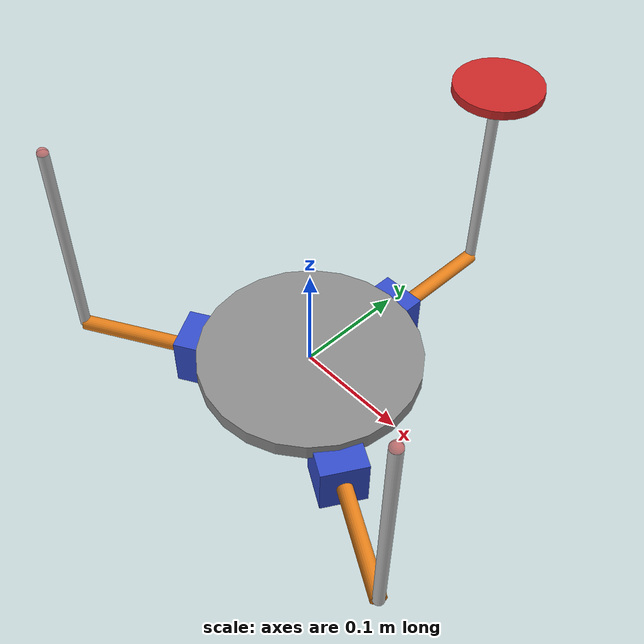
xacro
<?xml version="1.0"?>
<robot xmlns:xacro="http://www.ros.org/wiki/xacro" name="deltaflex">

  <xacro:property name="base_r" value="0.100"/>
  <!-- base circumradius [m] -->
  <xacro:property name="ee_r" value="0.040"/>
  <!-- EE circumradius [m] -->
  <xacro:property name="upper_len" value="0.120"/>
  <!-- upper arm length [m] -->
  <xacro:property name="lower_len" value="0.200"/>
  <!-- forearm length [m] -->

  <!-- Joint dynamics — rigid by default for position control -->
  <xacro:property name="joint_damping" value="0.01"/>
  <!-- N·m·s/rad -->
  <xacro:property name="joint_friction" value="0.002"/>

  <!-- ================================================================
       Inertia helper macro — approximates solid cylinder
       ================================================================ -->
  <xacro:macro name="cyl_inertia" params="m r h">
    <inertial>
      <mass value="${m}"/>
      <inertia ixx="${m*(3*r*r+h*h)/12}" ixy="0" ixz="0" iyy="${m*(3*r*r+h*h)/12}" iyz="0" izz="${m*r*r/2}"/>
    </inertial>
  </xacro:macro>

  <!-- ================================================================
       WORLD + BASE
       ================================================================ -->
  <link name="world"/>

  <joint name="world_to_base" type="fixed">
    <parent link="world"/>
    <child link="base_link"/>
    <origin xyz="0 0 0" rpy="0 0 0"/>
  </joint>

  <link name="base_link">
    <visual>
      <geometry>
        <cylinder radius="${base_r}" length="0.015"/>
      </geometry>
      <material name="gray">
        <color rgba="0.55 0.55 0.55 1"/>
      </material>
    </visual>
    <collision>
      <geometry>
        <cylinder radius="${base_r}" length="0.015"/>
      </geometry>
    </collision>
    <inertial>
      <mass value="0.50"/>
      <inertia ixx="0.0012" ixy="0" ixz="0" iyy="0.0012" iyz="0" izz="0.0025"/>
    </inertial>
  </link>

  <xacro:macro name="delta_arm" params="id angle_deg">

    <!-- Motor body fixed to base -->
    <link name="motor_${id}">
      <visual>
        <geometry>
          <box size="0.042 0.042 0.048"/>
        </geometry>
        <material name="blue">
          <color rgba="0.2 0.3 0.8 1"/>
        </material>
      </visual>
      <collision>
        <geometry>
          <box size="0.042 0.042 0.048"/>
        </geometry>
      </collision>
      <inertial>
        <mass value="0.28"/>
        <inertia ixx="0.0001" ixy="0" ixz="0" iyy="0.0001" iyz="0" izz="0.0001"/>
      </inertial>
    </link>

    <joint name="base_to_motor_${id}" type="fixed">
      <parent link="base_link"/>
      <child link="motor_${id}"/>
      <origin xyz="${base_r*cos(angle_deg * pi / 180)}
             ${base_r*sin(angle_deg * pi / 180)}
             -0.024" rpy="0 0 ${angle_deg * pi / 180}"/>
    </joint>

    <!-- ACTUATED joint — motor shaft (joint_1, joint_2, joint_3) -->
    <link name="upper_arm_${id}">
      <visual>
        <origin xyz="0 0 ${-upper_len/2}" rpy="0 0 0"/>
        <geometry>
          <cylinder radius="0.007" length="${upper_len}"/>
        </geometry>
        <material name="orange">
          <color rgba="0.9 0.5 0.1 1"/>
        </material>
      </visual>
      <collision>
        <origin xyz="0 0 ${-upper_len/2}" rpy="0 0 0"/>
        <geometry>
          <cylinder radius="0.007" length="${upper_len}"/>
        </geometry>
      </collision>
      <xacro:cyl_inertia m="0.04" r="0.007" h="${upper_len}"/>
    </link>

    <joint name="joint_${id}" type="revolute">
      <parent link="motor_${id}"/>
      <child link="upper_arm_${id}"/>
      <origin xyz="0 0 0" rpy="0 ${-pi/2} 0"/>
      <axis xyz="0 1 0"/>
      <limit lower="${-pi/2}" upper="${pi/2}" effort="10.0" velocity="3.14"/>
      <dynamics damping="${joint_damping}" friction="${joint_friction}"/>
    </joint>

    <!-- PASSIVE elbow joint (upper arm → forearm) -->
    <link name="forearm_${id}">
      <visual>
        <origin xyz="0 0 ${-lower_len/2}" rpy="0 0 0"/>
        <geometry>
          <cylinder radius="0.005" length="${lower_len}"/>
        </geometry>
        <material name="silver">
          <color rgba="0.75 0.75 0.75 1"/>
        </material>
      </visual>
      <collision>
        <origin xyz="0 0 ${-lower_len/2}" rpy="0 0 0"/>
        <geometry>
          <cylinder radius="0.005" length="${lower_len}"/>
        </geometry>
      </collision>
      <xacro:cyl_inertia m="0.015" r="0.005" h="${lower_len}"/>
    </link>

    <joint name="elbow_${id}" type="revolute">
      <parent link="upper_arm_${id}"/>
      <child link="forearm_${id}"/>
      <origin xyz="0 0 ${-upper_len}" rpy="0 ${-pi/2} 0"/>
      <axis xyz="0 1 0"/>
      <limit lower="${-pi/2}" upper="${pi/2}" effort="5.0" velocity="3.14"/>
      <dynamics damping="${joint_damping}" friction="${joint_friction}"/>
    </joint>

    <!-- EE attachment frame at tip of each forearm -->
    <link name="ee_attach_${id}">
      <inertial>
        <mass value="0.001"/>
        <inertia ixx="1e-7" ixy="0" ixz="0" iyy="1e-7" iyz="0" izz="1e-7"/>
      </inertial>
    </link>

    <joint name="forearm_${id}_to_ee_attach" type="fixed">
      <parent link="forearm_${id}"/>
      <child link="ee_attach_${id}"/>
      <origin xyz="0 0 ${-lower_len}" rpy="0 0 0"/>
    </joint>

  </xacro:macro>

  <!-- Instantiate three arms at 90°, 210°, 330° -->
  <xacro:delta_arm id="1" angle_deg="90"/>
  <xacro:delta_arm id="2" angle_deg="210"/>
  <xacro:delta_arm id="3" angle_deg="330"/>

  <link name="end_effector">
    <visual>
      <geometry>
        <cylinder radius="${ee_r}" length="0.008"/>
      </geometry>
      <material name="red">
        <color rgba="0.8 0.15 0.15 1"/>
      </material>
    </visual>
    <collision>
      <geometry>
        <cylinder radius="${ee_r}" length="0.008"/>
      </geometry>
    </collision>
    <inertial>
      <mass value="0.020"/>
      <inertia ixx="1.5e-5" ixy="0" ixz="0" iyy="1.5e-5" iyz="0" izz="3.2e-5"/>
    </inertial>
  </link>

  <joint name="ee_attach_1_to_ee" type="fixed">
    <parent link="ee_attach_1"/>
    <child link="end_effector"/>
    <origin xyz="0 0 0" rpy="0 0 0"/>
  </joint>

  <!-- Visual connector arm 2 → EE (massless, visual only) -->
  <link name="ee_connector_2">
    <visual>
      <geometry>
        <sphere radius="0.005"/>
      </geometry>
      <material name="red">
        <color rgba="0.8 0.15 0.15 0.5"/>
      </material>
    </visual>
    <inertial>
      <mass value="0.0001"/>
      <inertia ixx="1e-9" ixy="0" ixz="0" iyy="1e-9" iyz="0" izz="1e-9"/>
    </inertial>
  </link>
  <joint name="ee_attach_2_to_connector" type="fixed">
    <parent link="ee_attach_2"/>
    <child link="ee_connector_2"/>
    <origin xyz="0 0 0" rpy="0 0 0"/>
  </joint>

  <!-- Visual connector arm 3 → EE (massless, visual only) -->
  <link name="ee_connector_3">
    <visual>
      <geometry>
        <sphere radius="0.005"/>
      </geometry>
      <material name="red">
        <color rgba="0.8 0.15 0.15 0.5"/>
      </material>
    </visual>
    <inertial>
      <mass value="0.0001"/>
      <inertia ixx="1e-9" ixy="0" ixz="0" iyy="1e-9" iyz="0" izz="1e-9"/>
    </inertial>
  </link>
  <joint name="ee_attach_3_to_connector" type="fixed">
    <parent link="ee_attach_3"/>
    <child link="ee_connector_3"/>
    <origin xyz="0 0 0" rpy="0 0 0"/>
  </joint>

  <xacro:include filename="$(find deltaflex_description)/urdf/deltaflex.ros2_control.xacro"/>

</robot>
